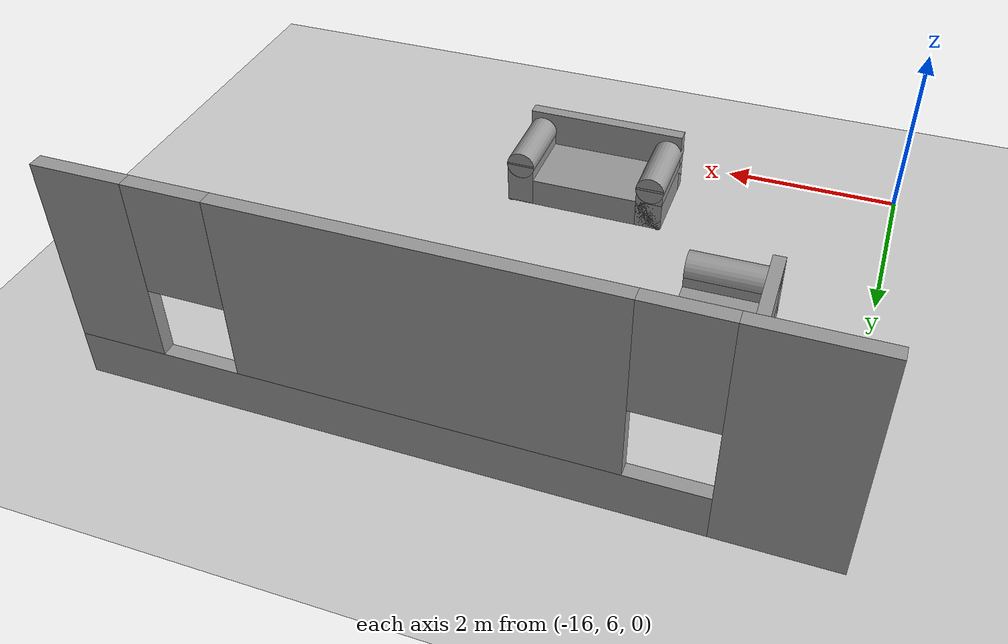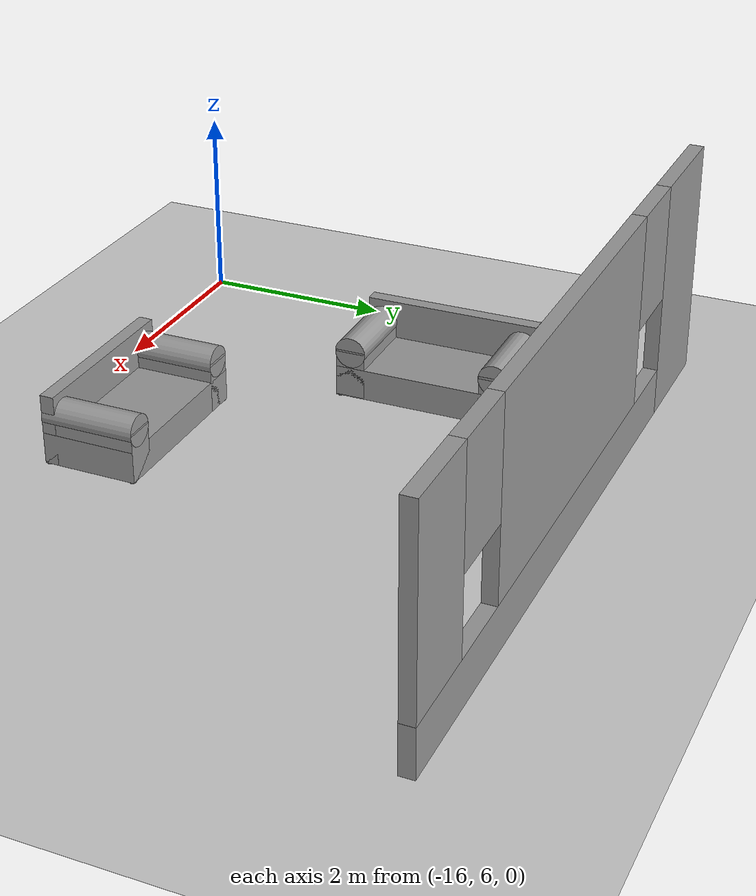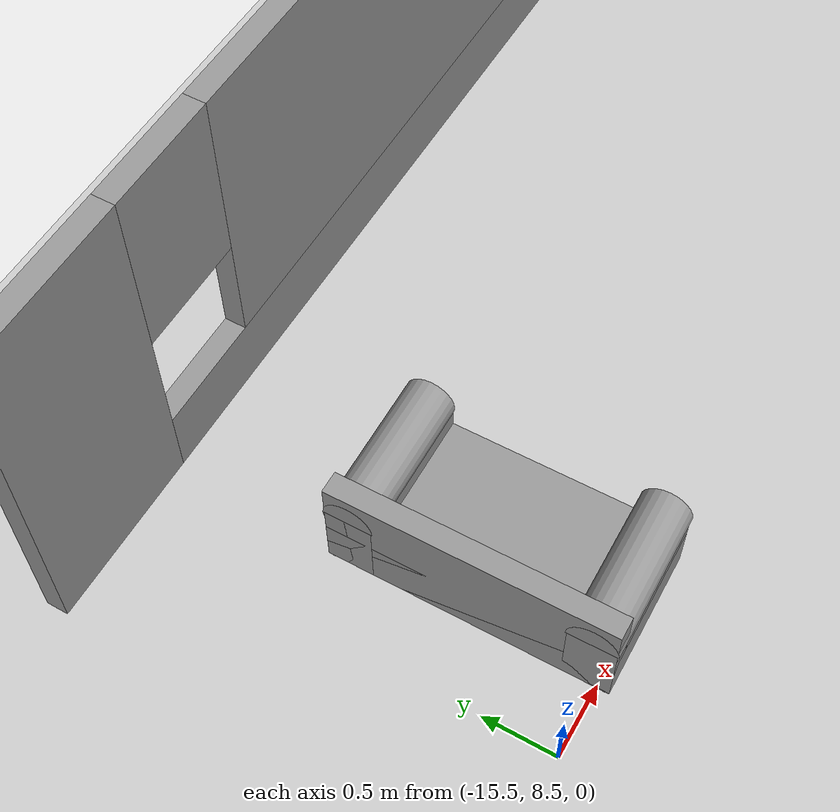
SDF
<sdf version="1.6">
 <world name="default">
  <model name="ground_plane">
   <static>1</static>
   <link name="link">
    <collision name="collision">
     <geometry><plane><normal>0 0 1</normal><size>100 100</size></plane></geometry>
     <surface>
      <contact><collide_bitmask>65535</collide_bitmask></contact>
      <friction><ode><mu>100</mu><mu2>50</mu2></ode></friction>
     </surface>
    </collision>
    <visual name="visual">
     <cast_shadows>0</cast_shadows>
     <geometry><plane><normal>0 0 1</normal><size>100 100</size></plane></geometry>
     <material>
      <script><uri>file://media/materials/scripts/gazebo.material</uri><name>Gazebo/Grey</name></script>
     </material>
    </visual>
   </link>
  </model>
  <model name="spruce1st">
   <pose>-3.08285 0.81707 0 0 -0 0</pose>
   <link name="Wall_13">
    <pose>-9.3221 10.7013 0 0 -0 0</pose>
    <visual name="Wall_13_Visual_0">
     <pose>-3.14849 0 1.25 0 -0 0</pose>
     <geometry><box><size>1.20303 0.15 2.5</size></box></geometry>
     <material>
      <script><uri>file://media/materials/scripts/gazebo.material</uri><name>Gazebo/Grey</name></script>
      <ambient>1 1 1 1</ambient>
     </material>
     <meta><layer>0</layer></meta>
    </visual>
    <collision name="Wall_13_Collision_0">
     <geometry><box><size>1.20303 0.15 2.5</size></box></geometry>
     <pose>-3.14849 0 1.25 0 -0 0</pose>
    </collision>
    <visual name="Wall_13_Visual_1">
     <pose>0.601514 0 0.25 0 -0 0</pose>
     <geometry><box><size>6.29697 0.15 0.5</size></box></geometry>
     <material>
      <script><uri>file://media/materials/scripts/gazebo.material</uri><name>Gazebo/Grey</name></script>
      <ambient>1 1 1 1</ambient>
     </material>
     <meta><layer>0</layer></meta>
    </visual>
    <collision name="Wall_13_Collision_1">
     <geometry><box><size>6.29697 0.15 0.5</size></box></geometry>
     <pose>0.601514 0 0.25 0 -0 0</pose>
    </collision>
    <visual name="Wall_13_Visual_2">
     <pose>0.141672 0 1.5 0 -0 0</pose>
     <geometry><box><size>3.77729 0.15 2</size></box></geometry>
     <material>
      <script><uri>file://media/materials/scripts/gazebo.material</uri><name>Gazebo/Grey</name></script>
      <ambient>1 1 1 1</ambient>
     </material>
     <meta><layer>0</layer></meta>
    </visual>
    <collision name="Wall_13_Collision_2">
     <geometry><box><size>3.77729 0.15 2</size></box></geometry>
     <pose>0.141672 0 1.5 0 -0 0</pose>
    </collision>
    <visual name="Wall_13_Visual_3">
     <pose>3.29016 0 1.5 0 -0 0</pose>
     <geometry><box><size>0.919683 0.15 2</size></box></geometry>
     <material>
      <script><uri>file://media/materials/scripts/gazebo.material</uri><name>Gazebo/Grey</name></script>
      <ambient>1 1 1 1</ambient>
     </material>
     <meta><layer>0</layer></meta>
    </visual>
    <collision name="Wall_13_Collision_3">
     <geometry><box><size>0.919683 0.15 2</size></box></geometry>
     <pose>3.29016 0 1.5 0 -0 0</pose>
    </collision>
    <visual name="Wall_13_Visual_4">
     <pose>-2.14697 0 1.9 0 -0 0</pose>
     <geometry><box><size>0.8 0.15 1.2</size></box></geometry>
     <material>
      <script><uri>file://media/materials/scripts/gazebo.material</uri><name>Gazebo/Grey</name></script>
      <ambient>1 1 1 1</ambient>
     </material>
     <meta><layer>0</layer></meta>
    </visual>
    <collision name="Wall_13_Collision_4">
     <geometry><box><size>0.8 0.15 1.2</size></box></geometry>
     <pose>-2.14697 0 1.9 0 -0 0</pose>
    </collision>
    <visual name="Wall_13_Visual_5">
     <pose>2.43032 0 1.9 0 -0 0</pose>
     <geometry><box><size>0.8 0.15 1.2</size></box></geometry>
     <material>
      <script><uri>file://media/materials/scripts/gazebo.material</uri><name>Gazebo/Grey</name></script>
      <ambient>1 1 1 1</ambient>
     </material>
     <meta><layer>0</layer></meta>
    </visual>
    <collision name="Wall_13_Collision_5">
     <geometry><box><size>0.8 0.15 1.2</size></box></geometry>
     <pose>2.43032 0 1.9 0 -0 0</pose>
    </collision>
   </link>
   <static>1</static>
  </model>
  <model name="couch2.0">
   <link name="link_0">
    <pose>0 0.042624 -0.025032 0 -0 0</pose>
    <inertial>
     <mass>0.629351</mass>
     <inertia>
      <ixx>0.0582683</ixx>
      <ixy>0</ixy>
      <ixz>0</ixz>
      <iyy>0.192922</iyy>
      <iyz>0</iyz>
      <izz>0.239546</izz>
     </inertia>
    </inertial>
    <visual name="visual">
     <geometry><box><size>1.88878 1 0.33319</size></box></geometry>
     <material>
      <lighting>1</lighting>
      <script><uri>file://media/materials/scripts/gazebo.material</uri><name>Gazebo/Grey</name></script>
      <shader type="pixel"><normal_map>__default__</normal_map></shader>
      <ambient>0.3 0.3 0.3 1</ambient>
      <diffuse>0.7 0.7 0.7 1</diffuse>
      <specular>0.01 0.01 0.01 1</specular>
      <emissive>0 0 0 1</emissive>
     </material>
    </visual>
    <collision name="collision">
     <geometry><box><size>1.88878 1 0.33319</size></box></geometry>
     <surface>
      <friction>
       <ode><mu>1</mu><mu2>1</mu2><fdir1>0 0 0</fdir1><slip1>0</slip1><slip2>0</slip2></ode>
       <torsional>
        <coefficient>1</coefficient>
        <patch_radius>0</patch_radius>
        <surface_radius>0</surface_radius>
        <use_patch_radius>1</use_patch_radius>
        <ode><slip>0</slip></ode>
       </torsional>
      </friction>
      <bounce><restitution_coefficient>0</restitution_coefficient><threshold>1e+06</threshold></bounce>
      <contact>
       <collide_without_contact>0</collide_without_contact>
       <collide_without_contact_bitmask>1</collide_without_contact_bitmask>
       <collide_bitmask>1</collide_bitmask>
       <ode>
        <soft_cfm>0</soft_cfm>
        <soft_erp>0.2</soft_erp>
        <kp>1e+13</kp>
        <kd>1</kd>
        <max_vel>0.01</max_vel>
        <min_depth>0</min_depth>
       </ode>
       <bullet>
        <split_impulse>1</split_impulse>
        <split_impulse_penetration_threshold>-0.01</split_impulse_penetration_threshold>
        <soft_cfm>0</soft_cfm>
        <soft_erp>0.2</soft_erp>
        <kp>1e+13</kp>
        <kd>1</kd>
       </bullet>
      </contact>
     </surface>
    </collision>
   </link>
   <link name="link_0_clone">
    <pose>0 -0.383981 0.182545 0 -0 0</pose>
    <inertial>
     <mass>0.207466</mass>
     <inertia>
      <ixx>0.0100546</ixx>
      <ixy>0</ixy>
      <ixz>0</ixz>
      <iyy>0.0713599</iyy>
      <iyz>0</iyz>
      <izz>0.0620503</izz>
     </inertia>
    </inertial>
    <visual name="visual">
     <geometry><box><size>1.88878 0.146789 0.748345</size></box></geometry>
     <material>
      <lighting>1</lighting>
      <script><uri>file://media/materials/scripts/gazebo.material</uri><name>Gazebo/Grey</name></script>
      <shader type="pixel"><normal_map>__default__</normal_map></shader>
      <ambient>0.3 0.3 0.3 1</ambient>
      <diffuse>0.7 0.7 0.7 1</diffuse>
      <specular>0.01 0.01 0.01 1</specular>
      <emissive>0 0 0 1</emissive>
     </material>
    </visual>
    <collision name="collision">
     <geometry><box><size>1.88878 0.146789 0.748345</size></box></geometry>
     <surface>
      <friction>
       <ode><mu>1</mu><mu2>1</mu2><fdir1>0 0 0</fdir1><slip1>0</slip1><slip2>0</slip2></ode>
       <torsional>
        <coefficient>1</coefficient>
        <patch_radius>0</patch_radius>
        <surface_radius>0</surface_radius>
        <use_patch_radius>1</use_patch_radius>
        <ode><slip>0</slip></ode>
       </torsional>
      </friction>
      <bounce><restitution_coefficient>0</restitution_coefficient><threshold>1e+06</threshold></bounce>
      <contact>
       <collide_without_contact>0</collide_without_contact>
       <collide_without_contact_bitmask>1</collide_without_contact_bitmask>
       <collide_bitmask>1</collide_bitmask>
       <ode>
        <soft_cfm>0</soft_cfm>
        <soft_erp>0.2</soft_erp>
        <kp>1e+13</kp>
        <kd>1</kd>
        <max_vel>0.01</max_vel>
        <min_depth>0</min_depth>
       </ode>
       <bullet>
        <split_impulse>1</split_impulse>
        <split_impulse_penetration_threshold>-0.01</split_impulse_penetration_threshold>
        <soft_cfm>0</soft_cfm>
        <soft_erp>0.2</soft_erp>
        <kp>1e+13</kp>
        <kd>1</kd>
       </bullet>
      </contact>
     </surface>
    </collision>
   </link>
   <link name="link_1">
    <pose>-0.909335 -0.422322 -0.235214 0 -0 0</pose>
    <inertial>
     <mass>0.000500743</mass>
     <inertia>
      <ixx>5.85623e-07</ixx>
      <ixy>0</ixy>
      <ixz>0</ixz>
      <iyy>5.85623e-07</iyy>
      <iyz>0</iyz>
      <izz>3.07643e-07</izz>
     </inertia>
    </inertial>
    <visual name="visual">
     <geometry><cylinder><radius>0.0350535</radius><length>0.101724</length></cylinder></geometry>
     <material>
      <lighting>1</lighting>
      <script><uri>file://media/materials/scripts/gazebo.material</uri><name>Gazebo/Grey</name></script>
      <shader type="pixel"/>
      <ambient>0.3 0.3 0.3 1</ambient>
      <diffuse>0.7 0.7 0.7 1</diffuse>
      <specular>0.01 0.01 0.01 1</specular>
      <emissive>0 0 0 1</emissive>
     </material>
    </visual>
    <collision name="collision">
     <geometry><cylinder><radius>0.035053</radius><length>0.101724</length></cylinder></geometry>
     <surface>
      <friction>
       <ode><mu>1</mu><mu2>1</mu2><fdir1>0 0 0</fdir1><slip1>0</slip1><slip2>0</slip2></ode>
       <torsional>
        <coefficient>1</coefficient>
        <patch_radius>0</patch_radius>
        <surface_radius>0</surface_radius>
        <use_patch_radius>1</use_patch_radius>
        <ode><slip>0</slip></ode>
       </torsional>
      </friction>
      <bounce><restitution_coefficient>0</restitution_coefficient><threshold>1e+06</threshold></bounce>
      <contact>
       <collide_without_contact>0</collide_without_contact>
       <collide_without_contact_bitmask>1</collide_without_contact_bitmask>
       <collide_bitmask>1</collide_bitmask>
       <ode>
        <soft_cfm>0</soft_cfm>
        <soft_erp>0.2</soft_erp>
        <kp>1e+13</kp>
        <kd>1</kd>
        <max_vel>0.01</max_vel>
        <min_depth>0</min_depth>
       </ode>
       <bullet>
        <split_impulse>1</split_impulse>
        <split_impulse_penetration_threshold>-0.01</split_impulse_penetration_threshold>
        <soft_cfm>0</soft_cfm>
        <soft_erp>0.2</soft_erp>
        <kp>1e+13</kp>
        <kd>1</kd>
       </bullet>
      </contact>
     </surface>
    </collision>
   </link>
   <link name="link_1_clone">
    <pose>-0.909335 0.507571 -0.235214 0 -0 0</pose>
    <inertial>
     <mass>0.000500743</mass>
     <inertia>
      <ixx>5.85623e-07</ixx>
      <ixy>0</ixy>
      <ixz>0</ixz>
      <iyy>5.85623e-07</iyy>
      <iyz>0</iyz>
      <izz>3.07643e-07</izz>
     </inertia>
    </inertial>
    <visual name="visual">
     <geometry><cylinder><radius>0.0350535</radius><length>0.101724</length></cylinder></geometry>
     <material>
      <lighting>1</lighting>
      <script><uri>file://media/materials/scripts/gazebo.material</uri><name>Gazebo/Grey</name></script>
      <shader type="pixel"/>
      <ambient>0.3 0.3 0.3 1</ambient>
      <diffuse>0.7 0.7 0.7 1</diffuse>
      <specular>0.01 0.01 0.01 1</specular>
      <emissive>0 0 0 1</emissive>
     </material>
    </visual>
    <collision name="collision">
     <geometry><cylinder><radius>0.035053</radius><length>0.101724</length></cylinder></geometry>
     <surface>
      <friction>
       <ode><mu>1</mu><mu2>1</mu2><fdir1>0 0 0</fdir1><slip1>0</slip1><slip2>0</slip2></ode>
       <torsional>
        <coefficient>1</coefficient>
        <patch_radius>0</patch_radius>
        <surface_radius>0</surface_radius>
        <use_patch_radius>1</use_patch_radius>
        <ode><slip>0</slip></ode>
       </torsional>
      </friction>
      <bounce><restitution_coefficient>0</restitution_coefficient><threshold>1e+06</threshold></bounce>
      <contact>
       <collide_without_contact>0</collide_without_contact>
       <collide_without_contact_bitmask>1</collide_without_contact_bitmask>
       <collide_bitmask>1</collide_bitmask>
       <ode>
        <soft_cfm>0</soft_cfm>
        <soft_erp>0.2</soft_erp>
        <kp>1e+13</kp>
        <kd>1</kd>
        <max_vel>0.01</max_vel>
        <min_depth>0</min_depth>
       </ode>
       <bullet>
        <split_impulse>1</split_impulse>
        <split_impulse_penetration_threshold>-0.01</split_impulse_penetration_threshold>
        <soft_cfm>0</soft_cfm>
        <soft_erp>0.2</soft_erp>
        <kp>1e+13</kp>
        <kd>1</kd>
       </bullet>
      </contact>
     </surface>
    </collision>
   </link>
   <link name="link_1_clone_0">
    <pose>0.909335 -0.422322 -0.235214 0 -0 0</pose>
    <inertial>
     <mass>0.000500743</mass>
     <inertia>
      <ixx>5.85623e-07</ixx>
      <ixy>0</ixy>
      <ixz>0</ixz>
      <iyy>5.85623e-07</iyy>
      <iyz>0</iyz>
      <izz>3.07643e-07</izz>
     </inertia>
    </inertial>
    <visual name="visual">
     <geometry><cylinder><radius>0.0350535</radius><length>0.101724</length></cylinder></geometry>
     <material>
      <lighting>1</lighting>
      <script><uri>file://media/materials/scripts/gazebo.material</uri><name>Gazebo/Grey</name></script>
      <shader type="pixel"/>
      <ambient>0.3 0.3 0.3 1</ambient>
      <diffuse>0.7 0.7 0.7 1</diffuse>
      <specular>0.01 0.01 0.01 1</specular>
      <emissive>0 0 0 1</emissive>
     </material>
    </visual>
    <collision name="collision">
     <geometry><cylinder><radius>0.035053</radius><length>0.101724</length></cylinder></geometry>
     <surface>
      <friction>
       <ode><mu>1</mu><mu2>1</mu2><fdir1>0 0 0</fdir1><slip1>0</slip1><slip2>0</slip2></ode>
       <torsional>
        <coefficient>1</coefficient>
        <patch_radius>0</patch_radius>
        <surface_radius>0</surface_radius>
        <use_patch_radius>1</use_patch_radius>
        <ode><slip>0</slip></ode>
       </torsional>
      </friction>
      <bounce><restitution_coefficient>0</restitution_coefficient><threshold>1e+06</threshold></bounce>
      <contact>
       <collide_without_contact>0</collide_without_contact>
       <collide_without_contact_bitmask>1</collide_without_contact_bitmask>
       <collide_bitmask>1</collide_bitmask>
       <ode>
        <soft_cfm>0</soft_cfm>
        <soft_erp>0.2</soft_erp>
        <kp>1e+13</kp>
        <kd>1</kd>
        <max_vel>0.01</max_vel>
        <min_depth>0</min_depth>
       </ode>
       <bullet>
        <split_impulse>1</split_impulse>
        <split_impulse_penetration_threshold>-0.01</split_impulse_penetration_threshold>
        <soft_cfm>0</soft_cfm>
        <soft_erp>0.2</soft_erp>
        <kp>1e+13</kp>
        <kd>1</kd>
       </bullet>
      </contact>
     </surface>
    </collision>
   </link>
   <link name="link_1_clone_1">
    <pose>0.909335 0.507571 -0.235214 0 -0 0</pose>
    <inertial>
     <mass>0.000500743</mass>
     <inertia>
      <ixx>5.85623e-07</ixx>
      <ixy>0</ixy>
      <ixz>0</ixz>
      <iyy>5.85623e-07</iyy>
      <iyz>0</iyz>
      <izz>3.07643e-07</izz>
     </inertia>
    </inertial>
    <visual name="visual">
     <geometry><cylinder><radius>0.0350535</radius><length>0.101724</length></cylinder></geometry>
     <material>
      <lighting>1</lighting>
      <script><uri>file://media/materials/scripts/gazebo.material</uri><name>Gazebo/Grey</name></script>
      <shader type="pixel"/>
      <ambient>0.3 0.3 0.3 1</ambient>
      <diffuse>0.7 0.7 0.7 1</diffuse>
      <specular>0.01 0.01 0.01 1</specular>
      <emissive>0 0 0 1</emissive>
     </material>
    </visual>
    <collision name="collision">
     <geometry><cylinder><radius>0.035053</radius><length>0.101724</length></cylinder></geometry>
     <surface>
      <friction>
       <ode><mu>1</mu><mu2>1</mu2><fdir1>0 0 0</fdir1><slip1>0</slip1><slip2>0</slip2></ode>
       <torsional>
        <coefficient>1</coefficient>
        <patch_radius>0</patch_radius>
        <surface_radius>0</surface_radius>
        <use_patch_radius>1</use_patch_radius>
        <ode><slip>0</slip></ode>
       </torsional>
      </friction>
      <bounce><restitution_coefficient>0</restitution_coefficient><threshold>1e+06</threshold></bounce>
      <contact>
       <collide_without_contact>0</collide_without_contact>
       <collide_without_contact_bitmask>1</collide_without_contact_bitmask>
       <collide_bitmask>1</collide_bitmask>
       <ode>
        <soft_cfm>0</soft_cfm>
        <soft_erp>0.2</soft_erp>
        <kp>1e+13</kp>
        <kd>1</kd>
        <max_vel>0.01</max_vel>
        <min_depth>0</min_depth>
       </ode>
       <bullet>
        <split_impulse>1</split_impulse>
        <split_impulse_penetration_threshold>-0.01</split_impulse_penetration_threshold>
        <soft_cfm>0</soft_cfm>
        <soft_erp>0.2</soft_erp>
        <kp>1e+13</kp>
        <kd>1</kd>
       </bullet>
      </contact>
     </surface>
    </collision>
   </link>
   <link name="link_3">
    <pose>-0.787536 0.042624 0.075794 0 -0 0</pose>
    <inertial>
     <mass>0.167781</mass>
     <inertia>
      <ixx>0.0179813</ixx>
      <ixy>0</ixy>
      <ixz>0</ixz>
      <iyy>0.0053755</iyy>
      <iyz>0</iyz>
      <izz>0.0153577</izz>
     </inertia>
    </inertial>
    <visual name="visual">
     <geometry><box><size>0.313705 1 0.534841</size></box></geometry>
     <material>
      <lighting>1</lighting>
      <script><uri>file://media/materials/scripts/gazebo.material</uri><name>Gazebo/Grey</name></script>
      <shader type="pixel"/>
      <ambient>0.3 0.3 0.3 1</ambient>
      <diffuse>0.7 0.7 0.7 1</diffuse>
      <specular>0.01 0.01 0.01 1</specular>
      <emissive>0 0 0 1</emissive>
     </material>
    </visual>
    <collision name="collision">
     <geometry><box><size>0.313705 1 0.534841</size></box></geometry>
     <surface>
      <friction>
       <ode><mu>1</mu><mu2>1</mu2><fdir1>0 0 0</fdir1><slip1>0</slip1><slip2>0</slip2></ode>
       <torsional>
        <coefficient>1</coefficient>
        <patch_radius>0</patch_radius>
        <surface_radius>0</surface_radius>
        <use_patch_radius>1</use_patch_radius>
        <ode><slip>0</slip></ode>
       </torsional>
      </friction>
      <bounce><restitution_coefficient>0</restitution_coefficient><threshold>1e+06</threshold></bounce>
      <contact>
       <collide_without_contact>0</collide_without_contact>
       <collide_without_contact_bitmask>1</collide_without_contact_bitmask>
       <collide_bitmask>1</collide_bitmask>
       <ode>
        <soft_cfm>0</soft_cfm>
        <soft_erp>0.2</soft_erp>
        <kp>1e+13</kp>
        <kd>1</kd>
        <max_vel>0.01</max_vel>
        <min_depth>0</min_depth>
       </ode>
       <bullet>
        <split_impulse>1</split_impulse>
        <split_impulse_penetration_threshold>-0.01</split_impulse_penetration_threshold>
        <soft_cfm>0</soft_cfm>
        <soft_erp>0.2</soft_erp>
        <kp>1e+13</kp>
        <kd>1</kd>
       </bullet>
      </contact>
     </surface>
    </collision>
   </link>
   <link name="link_3_clone">
    <pose>0.787536 0.042624 0.075794 0 -0 0</pose>
    <inertial>
     <mass>0.163893</mass>
     <inertia>
      <ixx>0.0173856</ixx>
      <ixy>0</ixy>
      <ixz>0</ixz>
      <iyy>0.00507196</iyy>
      <iyz>0</iyz>
      <izz>0.0150018</izz>
     </inertia>
    </inertial>
    <visual name="visual">
     <geometry><box><size>0.313705 1 0.522447</size></box></geometry>
     <material>
      <lighting>1</lighting>
      <script><uri>file://media/materials/scripts/gazebo.material</uri><name>Gazebo/Grey</name></script>
      <shader type="pixel"><normal_map>__default__</normal_map></shader>
      <ambient>0.3 0.3 0.3 1</ambient>
      <diffuse>0.7 0.7 0.7 1</diffuse>
      <specular>0.01 0.01 0.01 1</specular>
      <emissive>0 0 0 1</emissive>
     </material>
    </visual>
    <collision name="collision">
     <geometry><box><size>0.313705 1 0.522447</size></box></geometry>
     <surface>
      <friction>
       <ode><mu>1</mu><mu2>1</mu2><fdir1>0 0 0</fdir1><slip1>0</slip1><slip2>0</slip2></ode>
       <torsional>
        <coefficient>1</coefficient>
        <patch_radius>0</patch_radius>
        <surface_radius>0</surface_radius>
        <use_patch_radius>1</use_patch_radius>
        <ode><slip>0</slip></ode>
       </torsional>
      </friction>
      <bounce><restitution_coefficient>0</restitution_coefficient><threshold>1e+06</threshold></bounce>
      <contact>
       <collide_without_contact>0</collide_without_contact>
       <collide_without_contact_bitmask>1</collide_without_contact_bitmask>
       <collide_bitmask>1</collide_bitmask>
       <ode>
        <soft_cfm>0</soft_cfm>
        <soft_erp>0.2</soft_erp>
        <kp>1e+13</kp>
        <kd>1</kd>
        <max_vel>0.01</max_vel>
        <min_depth>0</min_depth>
       </ode>
       <bullet>
        <split_impulse>1</split_impulse>
        <split_impulse_penetration_threshold>-0.01</split_impulse_penetration_threshold>
        <soft_cfm>0</soft_cfm>
        <soft_erp>0.2</soft_erp>
        <kp>1e+13</kp>
        <kd>1</kd>
       </bullet>
      </contact>
     </surface>
    </collision>
   </link>
   <link name="link_4">
    <pose>0.787536 0.042624 0.315876 1.573 -0 0</pose>
    <inertial>
     <mass>0.110343</mass>
     <inertia>
      <ixx>0.00995618</ixx>
      <ixy>0</ixy>
      <ixz>0</ixz>
      <iyy>0.00995618</iyy>
      <iyz>0</iyz>
      <izz>0.00152191</izz>
     </inertia>
     <pose>0 0 0 0 1.51 0</pose>
    </inertial>
    <visual name="visual">
     <geometry><cylinder><radius>0.166088</radius><length>1</length></cylinder></geometry>
     <material>
      <lighting>1</lighting>
      <script><uri>file://media/materials/scripts/gazebo.material</uri><name>Gazebo/Grey</name></script>
      <shader type="pixel"><normal_map>__default__</normal_map></shader>
      <ambient>0.3 0.3 0.3 1</ambient>
      <diffuse>0.7 0.7 0.7 1</diffuse>
      <specular>0.01 0.01 0.01 1</specular>
      <emissive>0 0 0 1</emissive>
     </material>
    </visual>
    <collision name="collision">
     <geometry><cylinder><radius>0.166088</radius><length>1</length></cylinder></geometry>
     <surface>
      <friction>
       <ode><mu>1</mu><mu2>1</mu2><fdir1>0 0 0</fdir1><slip1>0</slip1><slip2>0</slip2></ode>
       <torsional>
        <coefficient>1</coefficient>
        <patch_radius>0</patch_radius>
        <surface_radius>0</surface_radius>
        <use_patch_radius>1</use_patch_radius>
        <ode><slip>0</slip></ode>
       </torsional>
      </friction>
      <bounce><restitution_coefficient>0</restitution_coefficient><threshold>1e+06</threshold></bounce>
      <contact>
       <collide_without_contact>0</collide_without_contact>
       <collide_without_contact_bitmask>1</collide_without_contact_bitmask>
       <collide_bitmask>1</collide_bitmask>
       <ode>
        <soft_cfm>0</soft_cfm>
        <soft_erp>0.2</soft_erp>
        <kp>1e+13</kp>
        <kd>1</kd>
        <max_vel>0.01</max_vel>
        <min_depth>0</min_depth>
       </ode>
       <bullet>
        <split_impulse>1</split_impulse>
        <split_impulse_penetration_threshold>-0.01</split_impulse_penetration_threshold>
        <soft_cfm>0</soft_cfm>
        <soft_erp>0.2</soft_erp>
        <kp>1e+13</kp>
        <kd>1</kd>
       </bullet>
      </contact>
     </surface>
    </collision>
   </link>
   <link name="link_4_clone">
    <pose>-0.787536 0.042624 0.315877 1.573 -0 0</pose>
    <inertial>
     <mass>0.110343</mass>
     <inertia>
      <ixx>0.00995618</ixx>
      <ixy>0</ixy>
      <ixz>0</ixz>
      <iyy>0.00995618</iyy>
      <iyz>0</iyz>
      <izz>0.00152191</izz>
     </inertia>
     <pose>0 0 0 0 1.51 0</pose>
    </inertial>
    <visual name="visual">
     <geometry><cylinder><radius>0.166088</radius><length>1</length></cylinder></geometry>
     <material>
      <lighting>1</lighting>
      <script><uri>file://media/materials/scripts/gazebo.material</uri><name>Gazebo/Grey</name></script>
      <shader type="pixel"><normal_map>__default__</normal_map></shader>
      <ambient>0.3 0.3 0.3 1</ambient>
      <diffuse>0.7 0.7 0.7 1</diffuse>
      <specular>0.01 0.01 0.01 1</specular>
      <emissive>0 0 0 1</emissive>
     </material>
    </visual>
    <collision name="collision">
     <geometry><cylinder><radius>0.166088</radius><length>1</length></cylinder></geometry>
     <surface>
      <friction>
       <ode><mu>1</mu><mu2>1</mu2><fdir1>0 0 0</fdir1><slip1>0</slip1><slip2>0</slip2></ode>
       <torsional>
        <coefficient>1</coefficient>
        <patch_radius>0</patch_radius>
        <surface_radius>0</surface_radius>
        <use_patch_radius>1</use_patch_radius>
        <ode><slip>0</slip></ode>
       </torsional>
      </friction>
      <bounce><restitution_coefficient>0</restitution_coefficient><threshold>1e+06</threshold></bounce>
      <contact>
       <collide_without_contact>0</collide_without_contact>
       <collide_without_contact_bitmask>1</collide_without_contact_bitmask>
       <collide_bitmask>1</collide_bitmask>
       <ode>
        <soft_cfm>0</soft_cfm>
        <soft_erp>0.2</soft_erp>
        <kp>1e+13</kp>
        <kd>1</kd>
        <max_vel>0.01</max_vel>
        <min_depth>0</min_depth>
       </ode>
       <bullet>
        <split_impulse>1</split_impulse>
        <split_impulse_penetration_threshold>-0.01</split_impulse_penetration_threshold>
        <soft_cfm>0</soft_cfm>
        <soft_erp>0.2</soft_erp>
        <kp>1e+13</kp>
        <kd>1</kd>
       </bullet>
      </contact>
     </surface>
    </collision>
   </link>
   <joint name="link_0_JOINT_0" type="fixed">
    <parent>link_0</parent>
    <child>link_1</child>
    <physics>
     <ode><limit><cfm>0</cfm><erp>0.2</erp></limit><suspension><cfm>0</cfm><erp>0.2</erp></suspension></ode>
    </physics>
   </joint>
   <joint name="link_0_JOINT_1" type="fixed">
    <parent>link_0</parent>
    <child>link_1_clone</child>
    <physics>
     <ode><limit><cfm>0</cfm><erp>0.2</erp></limit><suspension><cfm>0</cfm><erp>0.2</erp></suspension></ode>
    </physics>
   </joint>
   <joint name="link_0_JOINT_2" type="fixed">
    <parent>link_0</parent>
    <child>link_1_clone_0</child>
    <physics>
     <ode><limit><cfm>0</cfm><erp>0.2</erp></limit><suspension><cfm>0</cfm><erp>0.2</erp></suspension></ode>
    </physics>
   </joint>
   <joint name="link_0_JOINT_3" type="fixed">
    <parent>link_0</parent>
    <child>link_1_clone_1</child>
    <physics>
     <ode><limit><cfm>0</cfm><erp>0.2</erp></limit><suspension><cfm>0</cfm><erp>0.2</erp></suspension></ode>
    </physics>
   </joint>
   <joint name="link_0_JOINT_4" type="fixed">
    <parent>link_0</parent>
    <child>link_3</child>
    <physics>
     <ode><limit><cfm>0</cfm><erp>0.2</erp></limit><suspension><cfm>0</cfm><erp>0.2</erp></suspension></ode>
    </physics>
   </joint>
   <joint name="link_0_JOINT_5" type="fixed">
    <parent>link_0</parent>
    <child>link_3_clone</child>
    <physics>
     <ode><limit><cfm>0</cfm><erp>0.2</erp></limit><suspension><cfm>0</cfm><erp>0.2</erp></suspension></ode>
    </physics>
   </joint>
   <joint name="link_0_JOINT_9" type="fixed">
    <parent>link_0</parent>
    <child>link_0_clone</child>
    <physics>
     <ode><limit><cfm>0</cfm><erp>0.2</erp></limit><suspension><cfm>0</cfm><erp>0.2</erp></suspension></ode>
    </physics>
   </joint>
   <joint name="link_4_JOINT_7" type="fixed">
    <parent>link_4</parent>
    <child>link_3_clone</child>
    <physics>
     <ode><limit><cfm>0</cfm><erp>0.2</erp></limit><suspension><cfm>0</cfm><erp>0.2</erp></suspension></ode>
    </physics>
   </joint>
   <joint name="link_4_clone_JOINT_8" type="fixed">
    <parent>link_3</parent>
    <child>link_4_clone</child>
    <physics>
     <ode><limit><cfm>0</cfm><erp>0.2</erp></limit><suspension><cfm>0</cfm><erp>0.2</erp></suspension></ode>
    </physics>
   </joint>
   <static>0</static>
   <pose>-12.5174 6.87695 0.191632 2e-06 4e-06 -0.001419</pose>
  </model>
  <model name="couch2.0_0">
   <link name="link_0">
    <pose>0 0.042624 -0.025032 0 -0 0</pose>
    <inertial>
     <mass>0.629351</mass>
     <inertia>
      <ixx>0.0582683</ixx>
      <ixy>0</ixy>
      <ixz>0</ixz>
      <iyy>0.192922</iyy>
      <iyz>0</iyz>
      <izz>0.239546</izz>
     </inertia>
    </inertial>
    <visual name="visual">
     <geometry><box><size>1.88878 1 0.33319</size></box></geometry>
     <material>
      <lighting>1</lighting>
      <script><uri>file://media/materials/scripts/gazebo.material</uri><name>Gazebo/Grey</name></script>
      <shader type="pixel"><normal_map>__default__</normal_map></shader>
      <ambient>0.3 0.3 0.3 1</ambient>
      <diffuse>0.7 0.7 0.7 1</diffuse>
      <specular>0.01 0.01 0.01 1</specular>
      <emissive>0 0 0 1</emissive>
     </material>
    </visual>
    <collision name="collision">
     <geometry><box><size>1.88878 1 0.33319</size></box></geometry>
     <surface>
      <friction>
       <ode><mu>1</mu><mu2>1</mu2><fdir1>0 0 0</fdir1><slip1>0</slip1><slip2>0</slip2></ode>
       <torsional>
        <coefficient>1</coefficient>
        <patch_radius>0</patch_radius>
        <surface_radius>0</surface_radius>
        <use_patch_radius>1</use_patch_radius>
        <ode><slip>0</slip></ode>
       </torsional>
      </friction>
      <bounce><restitution_coefficient>0</restitution_coefficient><threshold>1e+06</threshold></bounce>
      <contact>
       <collide_without_contact>0</collide_without_contact>
       <collide_without_contact_bitmask>1</collide_without_contact_bitmask>
       <collide_bitmask>1</collide_bitmask>
       <ode>
        <soft_cfm>0</soft_cfm>
        <soft_erp>0.2</soft_erp>
        <kp>1e+13</kp>
        <kd>1</kd>
        <max_vel>0.01</max_vel>
        <min_depth>0</min_depth>
       </ode>
       <bullet>
        <split_impulse>1</split_impulse>
        <split_impulse_penetration_threshold>-0.01</split_impulse_penetration_threshold>
        <soft_cfm>0</soft_cfm>
        <soft_erp>0.2</soft_erp>
        <kp>1e+13</kp>
        <kd>1</kd>
       </bullet>
      </contact>
     </surface>
    </collision>
   </link>
   <link name="link_0_clone">
    <pose>0 -0.383981 0.182545 0 -0 0</pose>
    <inertial>
     <mass>0.207466</mass>
     <inertia>
      <ixx>0.0100546</ixx>
      <ixy>0</ixy>
      <ixz>0</ixz>
      <iyy>0.0713599</iyy>
      <iyz>0</iyz>
      <izz>0.0620503</izz>
     </inertia>
    </inertial>
    <visual name="visual">
     <geometry><box><size>1.88878 0.146789 0.748345</size></box></geometry>
     <material>
      <lighting>1</lighting>
      <script><uri>file://media/materials/scripts/gazebo.material</uri><name>Gazebo/Grey</name></script>
      <shader type="pixel"><normal_map>__default__</normal_map></shader>
      <ambient>0.3 0.3 0.3 1</ambient>
      <diffuse>0.7 0.7 0.7 1</diffuse>
      <specular>0.01 0.01 0.01 1</specular>
      <emissive>0 0 0 1</emissive>
     </material>
    </visual>
    <collision name="collision">
     <geometry><box><size>1.88878 0.146789 0.748345</size></box></geometry>
     <surface>
      <friction>
       <ode><mu>1</mu><mu2>1</mu2><fdir1>0 0 0</fdir1><slip1>0</slip1><slip2>0</slip2></ode>
       <torsional>
        <coefficient>1</coefficient>
        <patch_radius>0</patch_radius>
        <surface_radius>0</surface_radius>
        <use_patch_radius>1</use_patch_radius>
        <ode><slip>0</slip></ode>
       </torsional>
      </friction>
      <bounce><restitution_coefficient>0</restitution_coefficient><threshold>1e+06</threshold></bounce>
      <contact>
       <collide_without_contact>0</collide_without_contact>
       <collide_without_contact_bitmask>1</collide_without_contact_bitmask>
       <collide_bitmask>1</collide_bitmask>
       <ode>
        <soft_cfm>0</soft_cfm>
        <soft_erp>0.2</soft_erp>
        <kp>1e+13</kp>
        <kd>1</kd>
        <max_vel>0.01</max_vel>
        <min_depth>0</min_depth>
       </ode>
       <bullet>
        <split_impulse>1</split_impulse>
        <split_impulse_penetration_threshold>-0.01</split_impulse_penetration_threshold>
        <soft_cfm>0</soft_cfm>
        <soft_erp>0.2</soft_erp>
        <kp>1e+13</kp>
        <kd>1</kd>
       </bullet>
      </contact>
     </surface>
    </collision>
   </link>
   <link name="link_1">
    <pose>-0.909335 -0.422322 -0.235214 0 -0 0</pose>
    <inertial>
     <mass>0.000500743</mass>
     <inertia>
      <ixx>5.85623e-07</ixx>
      <ixy>0</ixy>
      <ixz>0</ixz>
      <iyy>5.85623e-07</iyy>
      <iyz>0</iyz>
      <izz>3.07643e-07</izz>
     </inertia>
    </inertial>
    <visual name="visual">
     <geometry><cylinder><radius>0.0350535</radius><length>0.101724</length></cylinder></geometry>
     <material>
      <lighting>1</lighting>
      <script><uri>file://media/materials/scripts/gazebo.material</uri><name>Gazebo/Grey</name></script>
      <shader type="pixel"/>
      <ambient>0.3 0.3 0.3 1</ambient>
      <diffuse>0.7 0.7 0.7 1</diffuse>
      <specular>0.01 0.01 0.01 1</specular>
      <emissive>0 0 0 1</emissive>
     </material>
    </visual>
    <collision name="collision">
     <geometry><cylinder><radius>0.035053</radius><length>0.101724</length></cylinder></geometry>
     <surface>
      <friction>
       <ode><mu>1</mu><mu2>1</mu2><fdir1>0 0 0</fdir1><slip1>0</slip1><slip2>0</slip2></ode>
       <torsional>
        <coefficient>1</coefficient>
        <patch_radius>0</patch_radius>
        <surface_radius>0</surface_radius>
        <use_patch_radius>1</use_patch_radius>
        <ode><slip>0</slip></ode>
       </torsional>
      </friction>
      <bounce><restitution_coefficient>0</restitution_coefficient><threshold>1e+06</threshold></bounce>
      <contact>
       <collide_without_contact>0</collide_without_contact>
       <collide_without_contact_bitmask>1</collide_without_contact_bitmask>
       <collide_bitmask>1</collide_bitmask>
       <ode>
        <soft_cfm>0</soft_cfm>
        <soft_erp>0.2</soft_erp>
        <kp>1e+13</kp>
        <kd>1</kd>
        <max_vel>0.01</max_vel>
        <min_depth>0</min_depth>
       </ode>
       <bullet>
        <split_impulse>1</split_impulse>
        <split_impulse_penetration_threshold>-0.01</split_impulse_penetration_threshold>
        <soft_cfm>0</soft_cfm>
        <soft_erp>0.2</soft_erp>
        <kp>1e+13</kp>
        <kd>1</kd>
       </bullet>
      </contact>
     </surface>
    </collision>
   </link>
   <link name="link_1_clone">
    <pose>-0.909335 0.507571 -0.235214 0 -0 0</pose>
    <inertial>
     <mass>0.000500743</mass>
     <inertia>
      <ixx>5.85623e-07</ixx>
      <ixy>0</ixy>
      <ixz>0</ixz>
      <iyy>5.85623e-07</iyy>
      <iyz>0</iyz>
      <izz>3.07643e-07</izz>
     </inertia>
    </inertial>
    <visual name="visual">
     <geometry><cylinder><radius>0.0350535</radius><length>0.101724</length></cylinder></geometry>
     <material>
      <lighting>1</lighting>
      <script><uri>file://media/materials/scripts/gazebo.material</uri><name>Gazebo/Grey</name></script>
      <shader type="pixel"/>
      <ambient>0.3 0.3 0.3 1</ambient>
      <diffuse>0.7 0.7 0.7 1</diffuse>
      <specular>0.01 0.01 0.01 1</specular>
      <emissive>0 0 0 1</emissive>
     </material>
    </visual>
    <collision name="collision">
     <geometry><cylinder><radius>0.035053</radius><length>0.101724</length></cylinder></geometry>
     <surface>
      <friction>
       <ode><mu>1</mu><mu2>1</mu2><fdir1>0 0 0</fdir1><slip1>0</slip1><slip2>0</slip2></ode>
       <torsional>
        <coefficient>1</coefficient>
        <patch_radius>0</patch_radius>
        <surface_radius>0</surface_radius>
        <use_patch_radius>1</use_patch_radius>
        <ode><slip>0</slip></ode>
       </torsional>
      </friction>
      <bounce><restitution_coefficient>0</restitution_coefficient><threshold>1e+06</threshold></bounce>
      <contact>
       <collide_without_contact>0</collide_without_contact>
       <collide_without_contact_bitmask>1</collide_without_contact_bitmask>
       <collide_bitmask>1</collide_bitmask>
       <ode>
        <soft_cfm>0</soft_cfm>
        <soft_erp>0.2</soft_erp>
        <kp>1e+13</kp>
        <kd>1</kd>
        <max_vel>0.01</max_vel>
        <min_depth>0</min_depth>
       </ode>
       <bullet>
        <split_impulse>1</split_impulse>
        <split_impulse_penetration_threshold>-0.01</split_impulse_penetration_threshold>
        <soft_cfm>0</soft_cfm>
        <soft_erp>0.2</soft_erp>
        <kp>1e+13</kp>
        <kd>1</kd>
       </bullet>
      </contact>
     </surface>
    </collision>
   </link>
   <link name="link_1_clone_0">
    <pose>0.909335 -0.422322 -0.235214 0 -0 0</pose>
    <inertial>
     <mass>0.000500743</mass>
     <inertia>
      <ixx>5.85623e-07</ixx>
      <ixy>0</ixy>
      <ixz>0</ixz>
      <iyy>5.85623e-07</iyy>
      <iyz>0</iyz>
      <izz>3.07643e-07</izz>
     </inertia>
    </inertial>
    <visual name="visual">
     <geometry><cylinder><radius>0.0350535</radius><length>0.101724</length></cylinder></geometry>
     <material>
      <lighting>1</lighting>
      <script><uri>file://media/materials/scripts/gazebo.material</uri><name>Gazebo/Grey</name></script>
      <shader type="pixel"/>
      <ambient>0.3 0.3 0.3 1</ambient>
      <diffuse>0.7 0.7 0.7 1</diffuse>
      <specular>0.01 0.01 0.01 1</specular>
      <emissive>0 0 0 1</emissive>
     </material>
    </visual>
    <collision name="collision">
     <geometry><cylinder><radius>0.035053</radius><length>0.101724</length></cylinder></geometry>
     <surface>
      <friction>
       <ode><mu>1</mu><mu2>1</mu2><fdir1>0 0 0</fdir1><slip1>0</slip1><slip2>0</slip2></ode>
       <torsional>
        <coefficient>1</coefficient>
        <patch_radius>0</patch_radius>
        <surface_radius>0</surface_radius>
        <use_patch_radius>1</use_patch_radius>
        <ode><slip>0</slip></ode>
       </torsional>
      </friction>
      <bounce><restitution_coefficient>0</restitution_coefficient><threshold>1e+06</threshold></bounce>
      <contact>
       <collide_without_contact>0</collide_without_contact>
       <collide_without_contact_bitmask>1</collide_without_contact_bitmask>
       <collide_bitmask>1</collide_bitmask>
       <ode>
        <soft_cfm>0</soft_cfm>
        <soft_erp>0.2</soft_erp>
        <kp>1e+13</kp>
        <kd>1</kd>
        <max_vel>0.01</max_vel>
        <min_depth>0</min_depth>
       </ode>
       <bullet>
        <split_impulse>1</split_impulse>
        <split_impulse_penetration_threshold>-0.01</split_impulse_penetration_threshold>
        <soft_cfm>0</soft_cfm>
        <soft_erp>0.2</soft_erp>
        <kp>1e+13</kp>
        <kd>1</kd>
       </bullet>
      </contact>
     </surface>
    </collision>
   </link>
   <link name="link_1_clone_1">
    <pose>0.909335 0.507571 -0.235214 0 -0 0</pose>
    <inertial>
     <mass>0.000500743</mass>
     <inertia>
      <ixx>5.85623e-07</ixx>
      <ixy>0</ixy>
      <ixz>0</ixz>
      <iyy>5.85623e-07</iyy>
      <iyz>0</iyz>
      <izz>3.07643e-07</izz>
     </inertia>
    </inertial>
    <visual name="visual">
     <geometry><cylinder><radius>0.0350535</radius><length>0.101724</length></cylinder></geometry>
     <material>
      <lighting>1</lighting>
      <script><uri>file://media/materials/scripts/gazebo.material</uri><name>Gazebo/Grey</name></script>
      <shader type="pixel"/>
      <ambient>0.3 0.3 0.3 1</ambient>
      <diffuse>0.7 0.7 0.7 1</diffuse>
      <specular>0.01 0.01 0.01 1</specular>
      <emissive>0 0 0 1</emissive>
     </material>
    </visual>
    <collision name="collision">
     <geometry><cylinder><radius>0.035053</radius><length>0.101724</length></cylinder></geometry>
     <surface>
      <friction>
       <ode><mu>1</mu><mu2>1</mu2><fdir1>0 0 0</fdir1><slip1>0</slip1><slip2>0</slip2></ode>
       <torsional>
        <coefficient>1</coefficient>
        <patch_radius>0</patch_radius>
        <surface_radius>0</surface_radius>
        <use_patch_radius>1</use_patch_radius>
        <ode><slip>0</slip></ode>
       </torsional>
      </friction>
      <bounce><restitution_coefficient>0</restitution_coefficient><threshold>1e+06</threshold></bounce>
      <contact>
       <collide_without_contact>0</collide_without_contact>
       <collide_without_contact_bitmask>1</collide_without_contact_bitmask>
       <collide_bitmask>1</collide_bitmask>
       <ode>
        <soft_cfm>0</soft_cfm>
        <soft_erp>0.2</soft_erp>
        <kp>1e+13</kp>
        <kd>1</kd>
        <max_vel>0.01</max_vel>
        <min_depth>0</min_depth>
       </ode>
       <bullet>
        <split_impulse>1</split_impulse>
        <split_impulse_penetration_threshold>-0.01</split_impulse_penetration_threshold>
        <soft_cfm>0</soft_cfm>
        <soft_erp>0.2</soft_erp>
        <kp>1e+13</kp>
        <kd>1</kd>
       </bullet>
      </contact>
     </surface>
    </collision>
   </link>
   <link name="link_3">
    <pose>-0.787536 0.042624 0.075794 0 -0 0</pose>
    <inertial>
     <mass>0.167781</mass>
     <inertia>
      <ixx>0.0179813</ixx>
      <ixy>0</ixy>
      <ixz>0</ixz>
      <iyy>0.0053755</iyy>
      <iyz>0</iyz>
      <izz>0.0153577</izz>
     </inertia>
    </inertial>
    <visual name="visual">
     <geometry><box><size>0.313705 1 0.534841</size></box></geometry>
     <material>
      <lighting>1</lighting>
      <script><uri>file://media/materials/scripts/gazebo.material</uri><name>Gazebo/Grey</name></script>
      <shader type="pixel"/>
      <ambient>0.3 0.3 0.3 1</ambient>
      <diffuse>0.7 0.7 0.7 1</diffuse>
      <specular>0.01 0.01 0.01 1</specular>
      <emissive>0 0 0 1</emissive>
     </material>
    </visual>
    <collision name="collision">
     <geometry><box><size>0.313705 1 0.534841</size></box></geometry>
     <surface>
      <friction>
       <ode><mu>1</mu><mu2>1</mu2><fdir1>0 0 0</fdir1><slip1>0</slip1><slip2>0</slip2></ode>
       <torsional>
        <coefficient>1</coefficient>
        <patch_radius>0</patch_radius>
        <surface_radius>0</surface_radius>
        <use_patch_radius>1</use_patch_radius>
        <ode><slip>0</slip></ode>
       </torsional>
      </friction>
      <bounce><restitution_coefficient>0</restitution_coefficient><threshold>1e+06</threshold></bounce>
      <contact>
       <collide_without_contact>0</collide_without_contact>
       <collide_without_contact_bitmask>1</collide_without_contact_bitmask>
       <collide_bitmask>1</collide_bitmask>
       <ode>
        <soft_cfm>0</soft_cfm>
        <soft_erp>0.2</soft_erp>
        <kp>1e+13</kp>
        <kd>1</kd>
        <max_vel>0.01</max_vel>
        <min_depth>0</min_depth>
       </ode>
       <bullet>
        <split_impulse>1</split_impulse>
        <split_impulse_penetration_threshold>-0.01</split_impulse_penetration_threshold>
        <soft_cfm>0</soft_cfm>
        <soft_erp>0.2</soft_erp>
        <kp>1e+13</kp>
        <kd>1</kd>
       </bullet>
      </contact>
     </surface>
    </collision>
   </link>
   <link name="link_3_clone">
    <pose>0.787536 0.042624 0.075794 0 -0 0</pose>
    <inertial>
     <mass>0.163893</mass>
     <inertia>
      <ixx>0.0173856</ixx>
      <ixy>0</ixy>
      <ixz>0</ixz>
      <iyy>0.00507196</iyy>
      <iyz>0</iyz>
      <izz>0.0150018</izz>
     </inertia>
    </inertial>
    <visual name="visual">
     <geometry><box><size>0.313705 1 0.522447</size></box></geometry>
     <material>
      <lighting>1</lighting>
      <script><uri>file://media/materials/scripts/gazebo.material</uri><name>Gazebo/Grey</name></script>
      <shader type="pixel"><normal_map>__default__</normal_map></shader>
      <ambient>0.3 0.3 0.3 1</ambient>
      <diffuse>0.7 0.7 0.7 1</diffuse>
      <specular>0.01 0.01 0.01 1</specular>
      <emissive>0 0 0 1</emissive>
     </material>
    </visual>
    <collision name="collision">
     <geometry><box><size>0.313705 1 0.522447</size></box></geometry>
     <surface>
      <friction>
       <ode><mu>1</mu><mu2>1</mu2><fdir1>0 0 0</fdir1><slip1>0</slip1><slip2>0</slip2></ode>
       <torsional>
        <coefficient>1</coefficient>
        <patch_radius>0</patch_radius>
        <surface_radius>0</surface_radius>
        <use_patch_radius>1</use_patch_radius>
        <ode><slip>0</slip></ode>
       </torsional>
      </friction>
      <bounce><restitution_coefficient>0</restitution_coefficient><threshold>1e+06</threshold></bounce>
      <contact>
       <collide_without_contact>0</collide_without_contact>
       <collide_without_contact_bitmask>1</collide_without_contact_bitmask>
       <collide_bitmask>1</collide_bitmask>
       <ode>
        <soft_cfm>0</soft_cfm>
        <soft_erp>0.2</soft_erp>
        <kp>1e+13</kp>
        <kd>1</kd>
        <max_vel>0.01</max_vel>
        <min_depth>0</min_depth>
       </ode>
       <bullet>
        <split_impulse>1</split_impulse>
        <split_impulse_penetration_threshold>-0.01</split_impulse_penetration_threshold>
        <soft_cfm>0</soft_cfm>
        <soft_erp>0.2</soft_erp>
        <kp>1e+13</kp>
        <kd>1</kd>
       </bullet>
      </contact>
     </surface>
    </collision>
   </link>
   <link name="link_4">
    <pose>0.787536 0.042624 0.315876 1.573 -0 0</pose>
    <inertial>
     <mass>0.110343</mass>
     <inertia>
      <ixx>0.00995618</ixx>
      <ixy>0</ixy>
      <ixz>0</ixz>
      <iyy>0.00995618</iyy>
      <iyz>0</iyz>
      <izz>0.00152191</izz>
     </inertia>
     <pose>0 0 0 0 1.51 0</pose>
    </inertial>
    <visual name="visual">
     <geometry><cylinder><radius>0.166088</radius><length>1</length></cylinder></geometry>
     <material>
      <lighting>1</lighting>
      <script><uri>file://media/materials/scripts/gazebo.material</uri><name>Gazebo/Grey</name></script>
      <shader type="pixel"><normal_map>__default__</normal_map></shader>
      <ambient>0.3 0.3 0.3 1</ambient>
      <diffuse>0.7 0.7 0.7 1</diffuse>
      <specular>0.01 0.01 0.01 1</specular>
      <emissive>0 0 0 1</emissive>
     </material>
    </visual>
    <collision name="collision">
     <geometry><cylinder><radius>0.166088</radius><length>1</length></cylinder></geometry>
     <surface>
      <friction>
       <ode><mu>1</mu><mu2>1</mu2><fdir1>0 0 0</fdir1><slip1>0</slip1><slip2>0</slip2></ode>
       <torsional>
        <coefficient>1</coefficient>
        <patch_radius>0</patch_radius>
        <surface_radius>0</surface_radius>
        <use_patch_radius>1</use_patch_radius>
        <ode><slip>0</slip></ode>
       </torsional>
      </friction>
      <bounce><restitution_coefficient>0</restitution_coefficient><threshold>1e+06</threshold></bounce>
      <contact>
       <collide_without_contact>0</collide_without_contact>
       <collide_without_contact_bitmask>1</collide_without_contact_bitmask>
       <collide_bitmask>1</collide_bitmask>
       <ode>
        <soft_cfm>0</soft_cfm>
        <soft_erp>0.2</soft_erp>
        <kp>1e+13</kp>
        <kd>1</kd>
        <max_vel>0.01</max_vel>
        <min_depth>0</min_depth>
       </ode>
       <bullet>
        <split_impulse>1</split_impulse>
        <split_impulse_penetration_threshold>-0.01</split_impulse_penetration_threshold>
        <soft_cfm>0</soft_cfm>
        <soft_erp>0.2</soft_erp>
        <kp>1e+13</kp>
        <kd>1</kd>
       </bullet>
      </contact>
     </surface>
    </collision>
   </link>
   <link name="link_4_clone">
    <pose>-0.787536 0.042624 0.315877 1.573 -0 0</pose>
    <inertial>
     <mass>0.110343</mass>
     <inertia>
      <ixx>0.00995618</ixx>
      <ixy>0</ixy>
      <ixz>0</ixz>
      <iyy>0.00995618</iyy>
      <iyz>0</iyz>
      <izz>0.00152191</izz>
     </inertia>
     <pose>0 0 0 0 1.51 0</pose>
    </inertial>
    <visual name="visual">
     <geometry><cylinder><radius>0.166088</radius><length>1</length></cylinder></geometry>
     <material>
      <lighting>1</lighting>
      <script><uri>file://media/materials/scripts/gazebo.material</uri><name>Gazebo/Grey</name></script>
      <shader type="pixel"><normal_map>__default__</normal_map></shader>
      <ambient>0.3 0.3 0.3 1</ambient>
      <diffuse>0.7 0.7 0.7 1</diffuse>
      <specular>0.01 0.01 0.01 1</specular>
      <emissive>0 0 0 1</emissive>
     </material>
    </visual>
    <collision name="collision">
     <geometry><cylinder><radius>0.166088</radius><length>1</length></cylinder></geometry>
     <surface>
      <friction>
       <ode><mu>1</mu><mu2>1</mu2><fdir1>0 0 0</fdir1><slip1>0</slip1><slip2>0</slip2></ode>
       <torsional>
        <coefficient>1</coefficient>
        <patch_radius>0</patch_radius>
        <surface_radius>0</surface_radius>
        <use_patch_radius>1</use_patch_radius>
        <ode><slip>0</slip></ode>
       </torsional>
      </friction>
      <bounce><restitution_coefficient>0</restitution_coefficient><threshold>1e+06</threshold></bounce>
      <contact>
       <collide_without_contact>0</collide_without_contact>
       <collide_without_contact_bitmask>1</collide_without_contact_bitmask>
       <collide_bitmask>1</collide_bitmask>
       <ode>
        <soft_cfm>0</soft_cfm>
        <soft_erp>0.2</soft_erp>
        <kp>1e+13</kp>
        <kd>1</kd>
        <max_vel>0.01</max_vel>
        <min_depth>0</min_depth>
       </ode>
       <bullet>
        <split_impulse>1</split_impulse>
        <split_impulse_penetration_threshold>-0.01</split_impulse_penetration_threshold>
        <soft_cfm>0</soft_cfm>
        <soft_erp>0.2</soft_erp>
        <kp>1e+13</kp>
        <kd>1</kd>
       </bullet>
      </contact>
     </surface>
    </collision>
   </link>
   <joint name="link_0_JOINT_0" type="fixed">
    <parent>link_0</parent>
    <child>link_1</child>
    <physics>
     <ode><limit><cfm>0</cfm><erp>0.2</erp></limit><suspension><cfm>0</cfm><erp>0.2</erp></suspension></ode>
    </physics>
   </joint>
   <joint name="link_0_JOINT_1" type="fixed">
    <parent>link_0</parent>
    <child>link_1_clone</child>
    <physics>
     <ode><limit><cfm>0</cfm><erp>0.2</erp></limit><suspension><cfm>0</cfm><erp>0.2</erp></suspension></ode>
    </physics>
   </joint>
   <joint name="link_0_JOINT_2" type="fixed">
    <parent>link_0</parent>
    <child>link_1_clone_0</child>
    <physics>
     <ode><limit><cfm>0</cfm><erp>0.2</erp></limit><suspension><cfm>0</cfm><erp>0.2</erp></suspension></ode>
    </physics>
   </joint>
   <joint name="link_0_JOINT_3" type="fixed">
    <parent>link_0</parent>
    <child>link_1_clone_1</child>
    <physics>
     <ode><limit><cfm>0</cfm><erp>0.2</erp></limit><suspension><cfm>0</cfm><erp>0.2</erp></suspension></ode>
    </physics>
   </joint>
   <joint name="link_0_JOINT_4" type="fixed">
    <parent>link_0</parent>
    <child>link_3</child>
    <physics>
     <ode><limit><cfm>0</cfm><erp>0.2</erp></limit><suspension><cfm>0</cfm><erp>0.2</erp></suspension></ode>
    </physics>
   </joint>
   <joint name="link_0_JOINT_5" type="fixed">
    <parent>link_0</parent>
    <child>link_3_clone</child>
    <physics>
     <ode><limit><cfm>0</cfm><erp>0.2</erp></limit><suspension><cfm>0</cfm><erp>0.2</erp></suspension></ode>
    </physics>
   </joint>
   <joint name="link_0_JOINT_9" type="fixed">
    <parent>link_0</parent>
    <child>link_0_clone</child>
    <physics>
     <ode><limit><cfm>0</cfm><erp>0.2</erp></limit><suspension><cfm>0</cfm><erp>0.2</erp></suspension></ode>
    </physics>
   </joint>
   <joint name="link_4_JOINT_7" type="fixed">
    <parent>link_4</parent>
    <child>link_3_clone</child>
    <physics>
     <ode><limit><cfm>0</cfm><erp>0.2</erp></limit><suspension><cfm>0</cfm><erp>0.2</erp></suspension></ode>
    </physics>
   </joint>
   <joint name="link_4_clone_JOINT_8" type="fixed">
    <parent>link_3</parent>
    <child>link_4_clone</child>
    <physics>
     <ode><limit><cfm>0</cfm><erp>0.2</erp></limit><suspension><cfm>0</cfm><erp>0.2</erp></suspension></ode>
    </physics>
   </joint>
   <static>0</static>
   <pose>-14.5689 9.36652 0.191633 2e-06 3e-06 -1.56048</pose>
  </model>
 </world>
</sdf>
